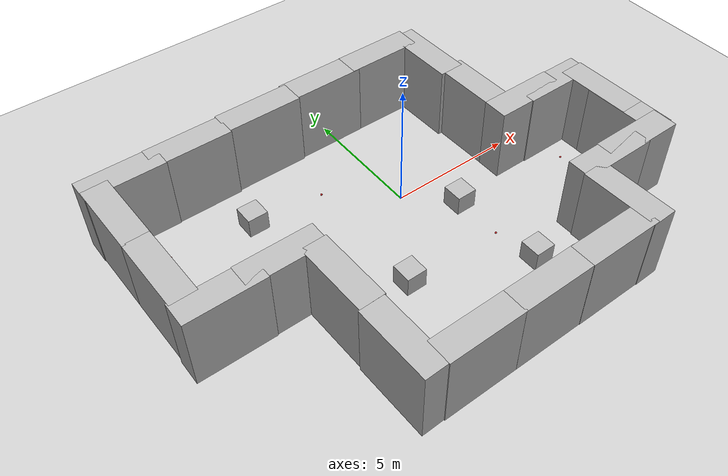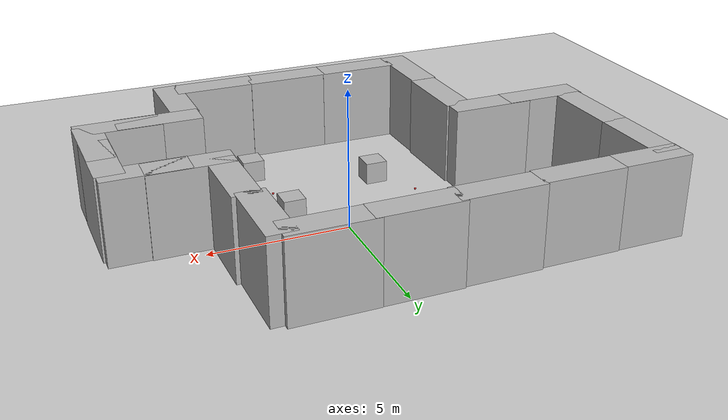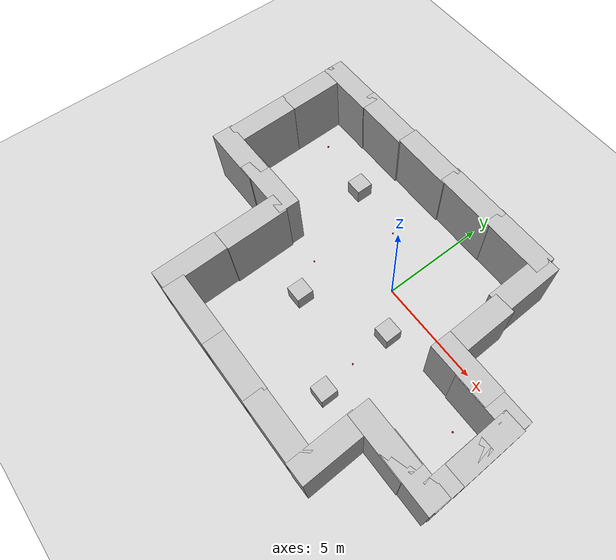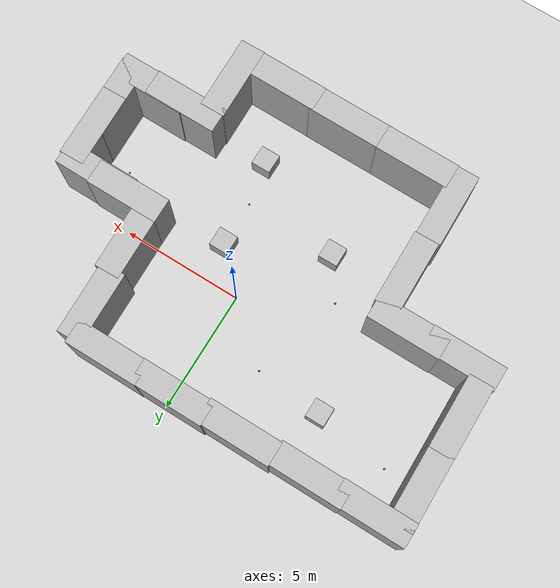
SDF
<sdf version="1.6">
 <world name="default">
  <light name="sun" type="directional">
   <pose>0 0 10 0 -0 0</pose>
   <diffuse>0.8 0.8 0.8 1</diffuse>
   <specular>0.2 0.2 0.2 1</specular>
   <attenuation>
    <range>1000</range>
    <constant>0.9</constant>
    <linear>0.01</linear>
    <quadratic>0.001</quadratic>
   </attenuation>
   <direction>-0.5 0.1 -0.9</direction>
  </light>
  <model name="ground_plane">
   <static>1</static>
   <link name="link">
    <collision name="collision">
     <geometry><plane><normal>0 0 1</normal><size>100 100</size></plane></geometry>
     <surface>
      <contact><collide_bitmask>65535</collide_bitmask></contact>
      <friction><ode><mu>100</mu><mu2>50</mu2></ode></friction>
     </surface>
    </collision>
    <visual name="visual">
     <cast_shadows>0</cast_shadows>
     <geometry><plane><normal>0 0 1</normal><size>100 100</size></plane></geometry>
     <material>
      <script><uri>file://media/materials/scripts/gazebo.material</uri><name>Gazebo/Grey</name></script>
     </material>
    </visual>
   </link>
  </model>
  <gravity>0 0 -9.8</gravity>
  <magnetic_field>6e-06 2.3e-05 -4.2e-05</magnetic_field>
  <atmosphere type="adiabatic"/>
  <physics name="default_physics" default="0" type="ode">
   <max_step_size>0.001</max_step_size>
   <real_time_factor>1</real_time_factor>
   <real_time_update_rate>1000</real_time_update_rate>
  </physics>
  <scene><ambient>0.4 0.4 0.4 1</ambient><background>0.7 0.7 0.7 1</background><shadows>1</shadows></scene>
  <spherical_coordinates>
   <surface_model>EARTH_WGS84</surface_model>
   <latitude_deg>0</latitude_deg>
   <longitude_deg>0</longitude_deg>
   <elevation>0</elevation>
   <heading_deg>0</heading_deg>
  </spherical_coordinates>
  <model name="brick_box_3x1x3">
   <static>1</static>
   <link name="chassis">
    <pose>0 0 1.5 0 -0 0</pose>
    <collision name="collision"><geometry><box><size>3 1 3</size></box></geometry></collision>
    <visual name="visual">
     <geometry><mesh><uri>model://brick_box_3x1x3/meshes/simple_box.dae</uri><scale>3 1 3</scale></mesh></geometry>
     <material>
      <script>
       <uri>model://brick_box_3x1x3/materials/scripts</uri>
       <uri>model://brick_box_3x1x3/materials/textures</uri>
       <name>BrickBox/Diffuse</name>
      </script>
     </material>
    </visual>
   </link>
   <pose>-3.09831 4.54119 0 0 -0 0</pose>
  </model>
  <model name="brick_box_3x1x3_clone">
   <static>1</static>
   <link name="chassis">
    <pose>0 0 1.5 0 -0 0</pose>
    <collision name="collision"><geometry><box><size>3 1 3</size></box></geometry></collision>
    <visual name="visual">
     <geometry><mesh><uri>model://brick_box_3x1x3/meshes/simple_box.dae</uri><scale>3 1 3</scale></mesh></geometry>
     <material>
      <script>
       <uri>model://brick_box_3x1x3/materials/scripts</uri>
       <uri>model://brick_box_3x1x3/materials/textures</uri>
       <name>BrickBox/Diffuse</name>
      </script>
     </material>
    </visual>
   </link>
   <pose>-0.322001 4.59793 0 0 -0 0</pose>
  </model>
  <model name="brick_box_3x1x3_clone_0">
   <static>1</static>
   <link name="chassis">
    <pose>0 0 1.5 0 -0 0</pose>
    <collision name="collision"><geometry><box><size>3 1 3</size></box></geometry></collision>
    <visual name="visual">
     <geometry><mesh><uri>model://brick_box_3x1x3/meshes/simple_box.dae</uri><scale>3 1 3</scale></mesh></geometry>
     <material>
      <script>
       <uri>model://brick_box_3x1x3/materials/scripts</uri>
       <uri>model://brick_box_3x1x3/materials/textures</uri>
       <name>BrickBox/Diffuse</name>
      </script>
     </material>
    </visual>
   </link>
   <pose>2.44215 4.61461 0 0 -0 0</pose>
  </model>
  <model name="brick_box_3x1x3_clone_1">
   <static>1</static>
   <link name="chassis">
    <pose>0 0 1.5 0 -0 0</pose>
    <collision name="collision"><geometry><box><size>3 1 3</size></box></geometry></collision>
    <visual name="visual">
     <geometry><mesh><uri>model://brick_box_3x1x3/meshes/simple_box.dae</uri><scale>3 1 3</scale></mesh></geometry>
     <material>
      <script>
       <uri>model://brick_box_3x1x3/materials/scripts</uri>
       <uri>model://brick_box_3x1x3/materials/textures</uri>
       <name>BrickBox/Diffuse</name>
      </script>
     </material>
    </visual>
   </link>
   <pose>3.93453 3.42176 0 0 0 -1.55173</pose>
  </model>
  <model name="brick_box_3x1x3_clone_1_clone">
   <static>1</static>
   <link name="chassis">
    <pose>0 0 1.5 0 -0 0</pose>
    <collision name="collision"><geometry><box><size>3 1 3</size></box></geometry></collision>
    <visual name="visual">
     <geometry><mesh><uri>model://brick_box_3x1x3/meshes/simple_box.dae</uri><scale>3 1 3</scale></mesh></geometry>
     <material>
      <script>
       <uri>model://brick_box_3x1x3/materials/scripts</uri>
       <uri>model://brick_box_3x1x3/materials/textures</uri>
       <name>BrickBox/Diffuse</name>
      </script>
     </material>
    </visual>
   </link>
   <pose>4.13691 0.677026 0 0 0 -1.55173</pose>
  </model>
  <model name="brick_box_3x1x3_clone_1_clone_0">
   <static>1</static>
   <link name="chassis">
    <pose>0 0 1.5 0 -0 0</pose>
    <collision name="collision"><geometry><box><size>3 1 3</size></box></geometry></collision>
    <visual name="visual">
     <geometry><mesh><uri>model://brick_box_3x1x3/meshes/simple_box.dae</uri><scale>3 1 3</scale></mesh></geometry>
     <material>
      <script>
       <uri>model://brick_box_3x1x3/materials/scripts</uri>
       <uri>model://brick_box_3x1x3/materials/textures</uri>
       <name>BrickBox/Diffuse</name>
      </script>
     </material>
    </visual>
   </link>
   <pose>7.68339 -2.27203 0 0 0 -1.55173</pose>
  </model>
  <model name="brick_box_3x1x3_clone_1_clone_1">
   <static>1</static>
   <link name="chassis">
    <pose>0 0 1.5 0 -0 0</pose>
    <collision name="collision"><geometry><box><size>3 1 3</size></box></geometry></collision>
    <visual name="visual">
     <geometry><mesh><uri>model://brick_box_3x1x3/meshes/simple_box.dae</uri><scale>3 1 3</scale></mesh></geometry>
     <material>
      <script>
       <uri>model://brick_box_3x1x3/materials/scripts</uri>
       <uri>model://brick_box_3x1x3/materials/textures</uri>
       <name>BrickBox/Diffuse</name>
      </script>
     </material>
    </visual>
   </link>
   <pose>4.24966 -6.63453 0 0 0 -1.55173</pose>
  </model>
  <model name="brick_box_3x1x3_clone_clone">
   <static>1</static>
   <link name="chassis">
    <pose>0 0 1.5 0 -0 0</pose>
    <collision name="collision"><geometry><box><size>3 1 3</size></box></geometry></collision>
    <visual name="visual">
     <geometry><mesh><uri>model://brick_box_3x1x3/meshes/simple_box.dae</uri><scale>3 1 3</scale></mesh></geometry>
     <material>
      <script>
       <uri>model://brick_box_3x1x3/materials/scripts</uri>
       <uri>model://brick_box_3x1x3/materials/textures</uri>
       <name>BrickBox/Diffuse</name>
      </script>
     </material>
    </visual>
   </link>
   <pose>2.51759 -7.62521 0 0 -0 0</pose>
  </model>
  <model name="brick_box_3x1x3_clone_clone_0">
   <static>1</static>
   <link name="chassis">
    <pose>0 0 1.5 0 -0 0</pose>
    <collision name="collision"><geometry><box><size>3 1 3</size></box></geometry></collision>
    <visual name="visual">
     <geometry><mesh><uri>model://brick_box_3x1x3/meshes/simple_box.dae</uri><scale>3 1 3</scale></mesh></geometry>
     <material>
      <script>
       <uri>model://brick_box_3x1x3/materials/scripts</uri>
       <uri>model://brick_box_3x1x3/materials/textures</uri>
       <name>BrickBox/Diffuse</name>
      </script>
     </material>
    </visual>
   </link>
   <pose>-0.327108 -7.61335 0 0 -0 0</pose>
  </model>
  <model name="brick_box_3x1x3_clone_clone_1">
   <static>1</static>
   <link name="chassis">
    <pose>0 0 1.5 0 -0 0</pose>
    <collision name="collision"><geometry><box><size>3 1 3</size></box></geometry></collision>
    <visual name="visual">
     <geometry><mesh><uri>model://brick_box_3x1x3/meshes/simple_box.dae</uri><scale>3 1 3</scale></mesh></geometry>
     <material>
      <script>
       <uri>model://brick_box_3x1x3/materials/scripts</uri>
       <uri>model://brick_box_3x1x3/materials/textures</uri>
       <name>BrickBox/Diffuse</name>
      </script>
     </material>
    </visual>
   </link>
   <pose>-3.26934 -7.61158 0 0 -0 0</pose>
  </model>
  <model name="brick_box_3x1x3_clone_1_clone_clone">
   <static>1</static>
   <link name="chassis">
    <pose>0 0 1.5 0 -0 0</pose>
    <collision name="collision"><geometry><box><size>3 1 3</size></box></geometry></collision>
    <visual name="visual">
     <geometry><mesh><uri>model://brick_box_3x1x3/meshes/simple_box.dae</uri><scale>3 1 3</scale></mesh></geometry>
     <material>
      <script>
       <uri>model://brick_box_3x1x3/materials/scripts</uri>
       <uri>model://brick_box_3x1x3/materials/textures</uri>
       <name>BrickBox/Diffuse</name>
      </script>
     </material>
    </visual>
   </link>
   <pose>-5.17038 -6.58684 0 0 0 -1.55173</pose>
  </model>
  <model name="brick_box_3x1x3_clone_1_clone_clone_0">
   <static>1</static>
   <link name="chassis">
    <pose>0 0 1.5 0 -0 0</pose>
    <collision name="collision"><geometry><box><size>3 1 3</size></box></geometry></collision>
    <visual name="visual">
     <geometry><mesh><uri>model://brick_box_3x1x3/meshes/simple_box.dae</uri><scale>3 1 3</scale></mesh></geometry>
     <material>
      <script>
       <uri>model://brick_box_3x1x3/materials/scripts</uri>
       <uri>model://brick_box_3x1x3/materials/textures</uri>
       <name>BrickBox/Diffuse</name>
      </script>
     </material>
    </visual>
   </link>
   <pose>-5.1746 -3.5857 0 0 0 -1.55173</pose>
  </model>
  <model name="brick_box_3x1x3_clone_1_clone_clone_1">
   <static>1</static>
   <link name="chassis">
    <pose>0 0 1.5 0 -0 0</pose>
    <collision name="collision"><geometry><box><size>3 1 3</size></box></geometry></collision>
    <visual name="visual">
     <geometry><mesh><uri>model://brick_box_3x1x3/meshes/simple_box.dae</uri><scale>3 1 3</scale></mesh></geometry>
     <material>
      <script>
       <uri>model://brick_box_3x1x3/materials/scripts</uri>
       <uri>model://brick_box_3x1x3/materials/textures</uri>
       <name>BrickBox/Diffuse</name>
      </script>
     </material>
    </visual>
   </link>
   <pose>-9.48963 -0.057053 0 0 0 -1.55173</pose>
  </model>
  <model name="brick_box_3x1x3_clone_1_clone_clone_2">
   <static>1</static>
   <link name="chassis">
    <pose>0 0 1.5 0 -0 0</pose>
    <collision name="collision"><geometry><box><size>3 1 3</size></box></geometry></collision>
    <visual name="visual">
     <geometry><mesh><uri>model://brick_box_3x1x3/meshes/simple_box.dae</uri><scale>3 1 3</scale></mesh></geometry>
     <material>
      <script>
       <uri>model://brick_box_3x1x3/materials/scripts</uri>
       <uri>model://brick_box_3x1x3/materials/textures</uri>
       <name>BrickBox/Diffuse</name>
      </script>
     </material>
    </visual>
   </link>
   <pose>-9.54183 2.87999 0 0 0 -1.55173</pose>
  </model>
  <model name="brick_box_3x1x3_clone_2">
   <static>1</static>
   <link name="chassis">
    <pose>0 0 1.5 0 -0 0</pose>
    <collision name="collision"><geometry><box><size>3 1 3</size></box></geometry></collision>
    <visual name="visual">
     <geometry><mesh><uri>model://brick_box_3x1x3/meshes/simple_box.dae</uri><scale>3 1 3</scale></mesh></geometry>
     <material>
      <script>
       <uri>model://brick_box_3x1x3/materials/scripts</uri>
       <uri>model://brick_box_3x1x3/materials/textures</uri>
       <name>BrickBox/Diffuse</name>
      </script>
     </material>
    </visual>
   </link>
   <pose>-6.0227 4.4674 0 0 -0 0</pose>
  </model>
  <model name="brick_box_3x1x3_clone_3">
   <static>1</static>
   <link name="chassis">
    <pose>0 0 1.5 0 -0 0</pose>
    <collision name="collision"><geometry><box><size>3 1 3</size></box></geometry></collision>
    <visual name="visual">
     <geometry><mesh><uri>model://brick_box_3x1x3/meshes/simple_box.dae</uri><scale>3 1 3</scale></mesh></geometry>
     <material>
      <script>
       <uri>model://brick_box_3x1x3/materials/scripts</uri>
       <uri>model://brick_box_3x1x3/materials/textures</uri>
       <name>BrickBox/Diffuse</name>
      </script>
     </material>
    </visual>
   </link>
   <pose>-8.58445 4.4381 0 0 -0 0</pose>
  </model>
  <model name="brick_box_3x1x3_clone_4">
   <static>1</static>
   <link name="chassis">
    <pose>0 0 1.5 0 -0 0</pose>
    <collision name="collision"><geometry><box><size>3 1 3</size></box></geometry></collision>
    <visual name="visual">
     <geometry><mesh><uri>model://brick_box_3x1x3/meshes/simple_box.dae</uri><scale>3 1 3</scale></mesh></geometry>
     <material>
      <script>
       <uri>model://brick_box_3x1x3/materials/scripts</uri>
       <uri>model://brick_box_3x1x3/materials/textures</uri>
       <name>BrickBox/Diffuse</name>
      </script>
     </material>
    </visual>
   </link>
   <pose>-6.27383 -1.90372 0 0 -0 0</pose>
  </model>
  <model name="brick_box_3x1x3_clone_5">
   <static>1</static>
   <link name="chassis">
    <pose>0 0 1.5 0 -0 0</pose>
    <collision name="collision"><geometry><box><size>3 1 3</size></box></geometry></collision>
    <visual name="visual">
     <geometry><mesh><uri>model://brick_box_3x1x3/meshes/simple_box.dae</uri><scale>3 1 3</scale></mesh></geometry>
     <material>
      <script>
       <uri>model://brick_box_3x1x3/materials/scripts</uri>
       <uri>model://brick_box_3x1x3/materials/textures</uri>
       <name>BrickBox/Diffuse</name>
      </script>
     </material>
    </visual>
   </link>
   <pose>-8.51362 -1.93604 0 0 -0 0</pose>
  </model>
  <model name="brick_box_3x1x3_clone_clone_2">
   <static>1</static>
   <link name="chassis">
    <pose>0 0 1.5 0 -0 0</pose>
    <collision name="collision"><geometry><box><size>3 1 3</size></box></geometry></collision>
    <visual name="visual">
     <geometry><mesh><uri>model://brick_box_3x1x3/meshes/simple_box.dae</uri><scale>3 1 3</scale></mesh></geometry>
     <material>
      <script>
       <uri>model://brick_box_3x1x3/materials/scripts</uri>
       <uri>model://brick_box_3x1x3/materials/textures</uri>
       <name>BrickBox/Diffuse</name>
      </script>
     </material>
    </visual>
   </link>
   <pose>5.15369 -0.813009 0 0 -0 0</pose>
  </model>
  <model name="brick_box_3x1x3_clone_clone_3">
   <static>1</static>
   <link name="chassis">
    <pose>0 0 1.5 0 -0 0</pose>
    <collision name="collision"><geometry><box><size>3 1 3</size></box></geometry></collision>
    <visual name="visual">
     <geometry><mesh><uri>model://brick_box_3x1x3/meshes/simple_box.dae</uri><scale>3 1 3</scale></mesh></geometry>
     <material>
      <script>
       <uri>model://brick_box_3x1x3/materials/scripts</uri>
       <uri>model://brick_box_3x1x3/materials/textures</uri>
       <name>BrickBox/Diffuse</name>
      </script>
     </material>
    </visual>
   </link>
   <pose>6.5804 -0.84731 0 0 -0 0</pose>
  </model>
  <model name="brick_box_3x1x3_clone_clone_4">
   <static>1</static>
   <link name="chassis">
    <pose>0 0 1.5 0 -0 0</pose>
    <collision name="collision"><geometry><box><size>3 1 3</size></box></geometry></collision>
    <visual name="visual">
     <geometry><mesh><uri>model://brick_box_3x1x3/meshes/simple_box.dae</uri><scale>3 1 3</scale></mesh></geometry>
     <material>
      <script>
       <uri>model://brick_box_3x1x3/materials/scripts</uri>
       <uri>model://brick_box_3x1x3/materials/textures</uri>
       <name>BrickBox/Diffuse</name>
      </script>
     </material>
    </visual>
   </link>
   <pose>5.26036 -4.90396 0 0 -0 0</pose>
  </model>
  <model name="brick_box_3x1x3_clone_clone_5">
   <static>1</static>
   <link name="chassis">
    <pose>0 0 1.5 0 -0 0</pose>
    <collision name="collision"><geometry><box><size>3 1 3</size></box></geometry></collision>
    <visual name="visual">
     <geometry><mesh><uri>model://brick_box_3x1x3/meshes/simple_box.dae</uri><scale>3 1 3</scale></mesh></geometry>
     <material>
      <script>
       <uri>model://brick_box_3x1x3/materials/scripts</uri>
       <uri>model://brick_box_3x1x3/materials/textures</uri>
       <name>BrickBox/Diffuse</name>
      </script>
     </material>
    </visual>
   </link>
   <pose>6.68927 -4.87096 0 0 -0 0</pose>
  </model>
  <model name="brick_box_3x1x3_clone_1_clone_0_clone">
   <static>1</static>
   <link name="chassis">
    <pose>0 0 1.5 0 -0 0</pose>
    <collision name="collision"><geometry><box><size>3 1 3</size></box></geometry></collision>
    <visual name="visual">
     <geometry><mesh><uri>model://brick_box_3x1x3/meshes/simple_box.dae</uri><scale>3 1 3</scale></mesh></geometry>
     <material>
      <script>
       <uri>model://brick_box_3x1x3/materials/scripts</uri>
       <uri>model://brick_box_3x1x3/materials/textures</uri>
       <name>BrickBox/Diffuse</name>
      </script>
     </material>
    </visual>
   </link>
   <pose>7.6975 -3.62565 0 0 0 -1.55173</pose>
  </model>
  <model name="number1">
   <pose>-5.07232 2.16961 0.4 0 -0 0</pose>
   <static>1</static>
   <link name="link">
    <visual name="visual">
     <geometry><mesh><uri>model://number1/meshes/number.dae</uri></mesh></geometry>
     <material>
      <script>
       <uri>model://number1/materials/scripts</uri>
       <uri>model://number1/materials/textures</uri>
       <name>Number/One</name>
      </script>
     </material>
    </visual>
   </link>
  </model>
  <model name="number2">
   <pose>-2.28861 -3.3481 0.4 0 -0 0</pose>
   <static>1</static>
   <link name="link">
    <visual name="visual">
     <geometry><mesh><uri>model://number1/meshes/number.dae</uri></mesh></geometry>
     <material>
      <script>
       <uri>model://number2/materials/scripts</uri>
       <uri>model://number2/materials/textures</uri>
       <name>Number/Two</name>
      </script>
     </material>
    </visual>
   </link>
  </model>
  <model name="number3">
   <pose>1.9026 -5.19112 0.4 0 -0 0</pose>
   <static>1</static>
   <link name="link">
    <visual name="visual">
     <geometry><mesh><uri>model://number1/meshes/number.dae</uri></mesh></geometry>
     <material>
      <script>
       <uri>model://number3/materials/scripts</uri>
       <uri>model://number3/materials/textures</uri>
       <name>Number/Three</name>
      </script>
     </material>
    </visual>
   </link>
  </model>
  <model name="number4">
   <pose>1.53591 -1.53276 0.4 0 -0 0</pose>
   <static>1</static>
   <link name="link">
    <visual name="visual">
     <geometry><mesh><uri>model://number1/meshes/number.dae</uri></mesh></geometry>
     <material>
      <script>
       <uri>model://number4/materials/scripts</uri>
       <uri>model://number4/materials/textures</uri>
       <name>Number/Four</name>
      </script>
     </material>
    </visual>
   </link>
  </model>
  <model name="cricket_ball">
   <link name="link">
    <pose>0 0 0.0375 0 -0 0</pose>
    <inertial>
     <mass>0.1467</mass>
     <inertia>
      <ixx>8.25187e-05</ixx>
      <ixy>0</ixy>
      <ixz>0</ixz>
      <iyy>8.25187e-05</iyy>
      <iyz>0</iyz>
      <izz>8.25187e-05</izz>
     </inertia>
    </inertial>
    <collision name="collision">
     <geometry><sphere><radius>0.0375</radius></sphere></geometry>
     <surface>
      <contact>
       <poissons_ratio>0.347</poissons_ratio>
       <elastic_modulus>8.8e+09</elastic_modulus>
       <ode><kp>100000</kp><kd>100</kd><max_vel>100</max_vel><min_depth>0.001</min_depth></ode>
      </contact>
      <friction>
       <torsional>
        <coefficient>1</coefficient>
        <use_patch_radius>0</use_patch_radius>
        <surface_radius>0.01</surface_radius>
       </torsional>
      </friction>
     </surface>
    </collision>
    <visual name="visual">
     <geometry><sphere><radius>0.0375</radius></sphere></geometry>
     <material>
      <script><uri>file://media/materials/scripts/gazebo.material</uri><name>Gazebo/Red</name></script>
     </material>
    </visual>
    <velocity_decay><linear>0</linear><angular>0.005</angular></velocity_decay>
   </link>
   <pose>-2.26176 1.95023 -0.001014 0 -0 0</pose>
  </model>
  <model name="cricket_ball_0">
   <link name="link">
    <pose>0 0 0.0375 0 -0 0</pose>
    <inertial>
     <mass>0.1467</mass>
     <inertia>
      <ixx>8.25187e-05</ixx>
      <ixy>0</ixy>
      <ixz>0</ixz>
      <iyy>8.25187e-05</iyy>
      <iyz>0</iyz>
      <izz>8.25187e-05</izz>
     </inertia>
    </inertial>
    <collision name="collision">
     <geometry><sphere><radius>0.0375</radius></sphere></geometry>
     <surface>
      <contact>
       <poissons_ratio>0.347</poissons_ratio>
       <elastic_modulus>8.8e+09</elastic_modulus>
       <ode><kp>100000</kp><kd>100</kd><max_vel>100</max_vel><min_depth>0.001</min_depth></ode>
      </contact>
      <friction>
       <torsional>
        <coefficient>1</coefficient>
        <use_patch_radius>0</use_patch_radius>
        <surface_radius>0.01</surface_radius>
       </torsional>
      </friction>
     </surface>
    </collision>
    <visual name="visual">
     <geometry><sphere><radius>0.0375</radius></sphere></geometry>
     <material>
      <script><uri>file://media/materials/scripts/gazebo.material</uri><name>Gazebo/Red</name></script>
     </material>
    </visual>
    <velocity_decay><linear>0</linear><angular>0.005</angular></velocity_decay>
   </link>
   <pose>-3.35846 -1.84187 -0.001014 0 -0 0</pose>
  </model>
  <model name="cricket_ball_1">
   <link name="link">
    <pose>0 0 0.0375 0 -0 0</pose>
    <inertial>
     <mass>0.1467</mass>
     <inertia>
      <ixx>8.25187e-05</ixx>
      <ixy>0</ixy>
      <ixz>0</ixz>
      <iyy>8.25187e-05</iyy>
      <iyz>0</iyz>
      <izz>8.25187e-05</izz>
     </inertia>
    </inertial>
    <collision name="collision">
     <geometry><sphere><radius>0.0375</radius></sphere></geometry>
     <surface>
      <contact>
       <poissons_ratio>0.347</poissons_ratio>
       <elastic_modulus>8.8e+09</elastic_modulus>
       <ode><kp>100000</kp><kd>100</kd><max_vel>100</max_vel><min_depth>0.001</min_depth></ode>
      </contact>
      <friction>
       <torsional>
        <coefficient>1</coefficient>
        <use_patch_radius>0</use_patch_radius>
        <surface_radius>0.01</surface_radius>
       </torsional>
      </friction>
     </surface>
    </collision>
    <visual name="visual">
     <geometry><sphere><radius>0.0375</radius></sphere></geometry>
     <material>
      <script><uri>file://media/materials/scripts/gazebo.material</uri><name>Gazebo/Red</name></script>
     </material>
    </visual>
    <velocity_decay><linear>0</linear><angular>0.005</angular></velocity_decay>
   </link>
   <pose>-8.21102 2.62391 -0.001014 0 -0 0</pose>
  </model>
  <model name="cricket_ball_2">
   <link name="link">
    <pose>0 0 0.0375 0 -0 0</pose>
    <inertial>
     <mass>0.1467</mass>
     <inertia>
      <ixx>8.25187e-05</ixx>
      <ixy>0</ixy>
      <ixz>0</ixz>
      <iyy>8.25187e-05</iyy>
      <iyz>0</iyz>
      <izz>8.25187e-05</izz>
     </inertia>
    </inertial>
    <collision name="collision">
     <geometry><sphere><radius>0.0375</radius></sphere></geometry>
     <surface>
      <contact>
       <poissons_ratio>0.347</poissons_ratio>
       <elastic_modulus>8.8e+09</elastic_modulus>
       <ode><kp>100000</kp><kd>100</kd><max_vel>100</max_vel><min_depth>0.001</min_depth></ode>
      </contact>
      <friction>
       <torsional>
        <coefficient>1</coefficient>
        <use_patch_radius>0</use_patch_radius>
        <surface_radius>0.01</surface_radius>
       </torsional>
      </friction>
     </surface>
    </collision>
    <visual name="visual">
     <geometry><sphere><radius>0.0375</radius></sphere></geometry>
     <material>
      <script><uri>file://media/materials/scripts/gazebo.material</uri><name>Gazebo/Red</name></script>
     </material>
    </visual>
    <velocity_decay><linear>0</linear><angular>0.005</angular></velocity_decay>
   </link>
   <pose>1.60205 -3.47771 -0.001014 0 -0 0</pose>
  </model>
  <model name="cricket_ball_3">
   <link name="link">
    <pose>0 0 0.0375 0 -0 0</pose>
    <inertial>
     <mass>0.1467</mass>
     <inertia>
      <ixx>8.25187e-05</ixx>
      <ixy>0</ixy>
      <ixz>0</ixz>
      <iyy>8.25187e-05</iyy>
      <iyz>0</iyz>
      <izz>8.25187e-05</izz>
     </inertia>
    </inertial>
    <collision name="collision">
     <geometry><sphere><radius>0.0375</radius></sphere></geometry>
     <surface>
      <contact>
       <poissons_ratio>0.347</poissons_ratio>
       <elastic_modulus>8.8e+09</elastic_modulus>
       <ode><kp>100000</kp><kd>100</kd><max_vel>100</max_vel><min_depth>0.001</min_depth></ode>
      </contact>
      <friction>
       <torsional>
        <coefficient>1</coefficient>
        <use_patch_radius>0</use_patch_radius>
        <surface_radius>0.01</surface_radius>
       </torsional>
      </friction>
     </surface>
    </collision>
    <visual name="visual">
     <geometry><sphere><radius>0.0375</radius></sphere></geometry>
     <material>
      <script><uri>file://media/materials/scripts/gazebo.material</uri><name>Gazebo/Red</name></script>
     </material>
    </visual>
    <velocity_decay><linear>0</linear><angular>0.005</angular></velocity_decay>
   </link>
   <pose>6.33195 -2.07352 -0.001014 0 -0 0</pose>
  </model>
 </world>
</sdf>
